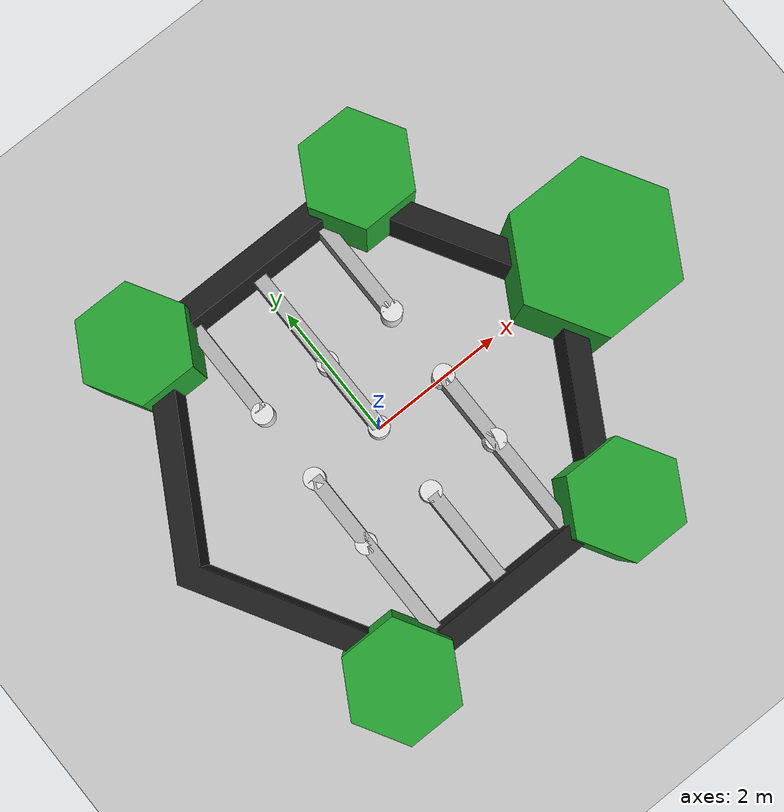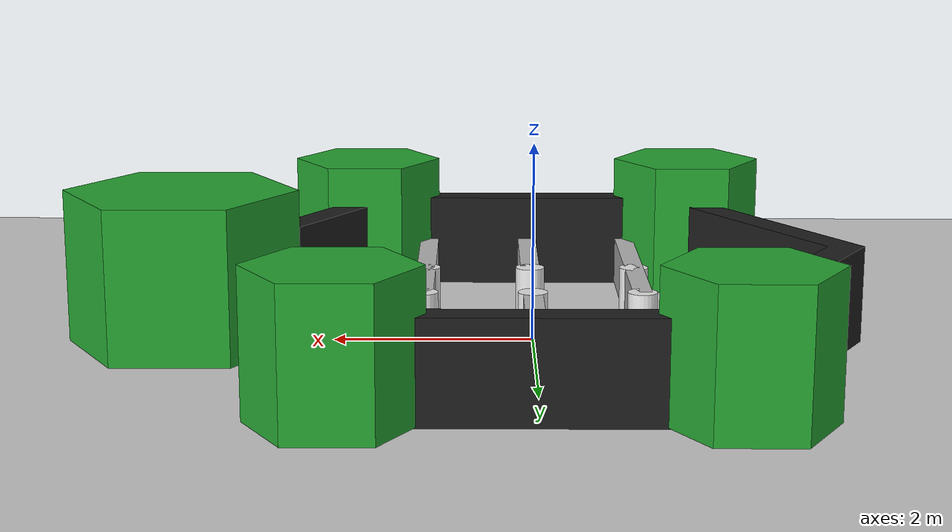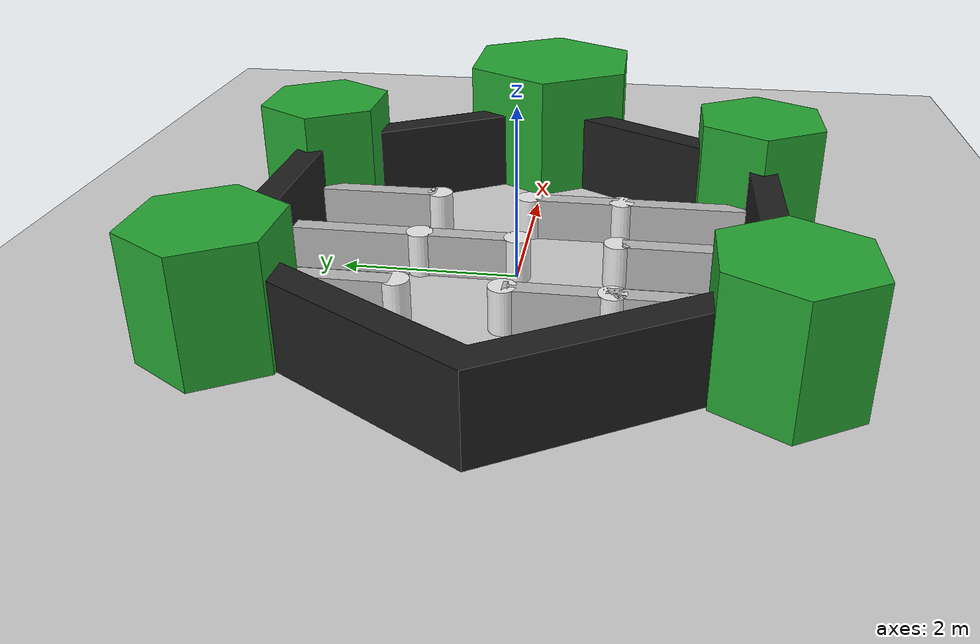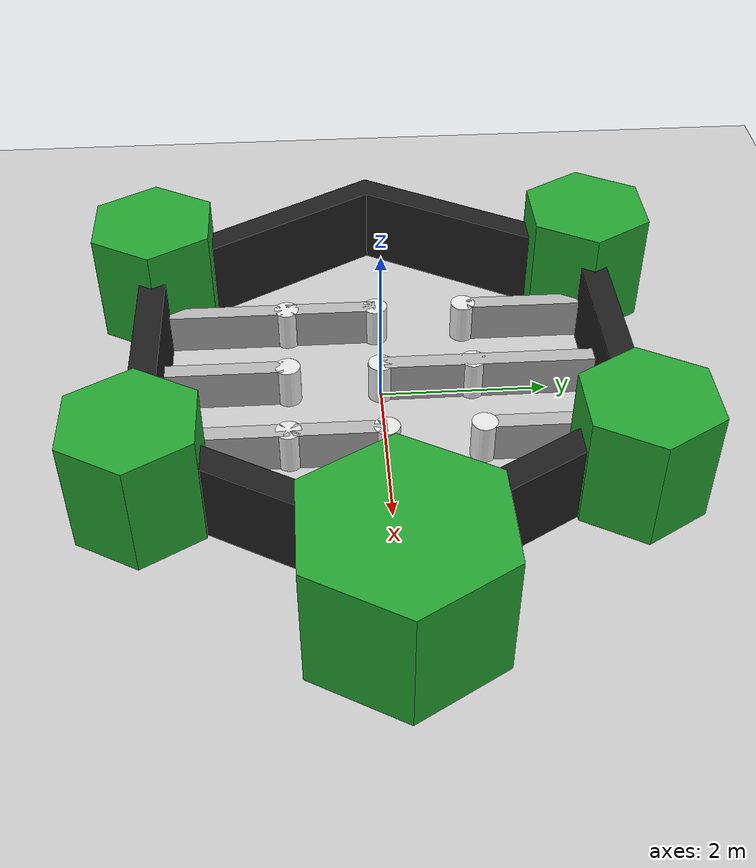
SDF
<sdf version='1.4'>
  <world name='default'>
    <!-- A global light source -->
    <include>
      <uri>model://sun</uri>
    </include>

    <!-- A ground plane -->
    <include>
      <uri>model://ground_plane</uri>
    </include>

    <physics type="ode">
      <real_time_update_rate>1500.0</real_time_update_rate>
      <max_step_size>0.001</max_step_size>
      <real_time_factor>1.5</real_time_factor>
      <ode>
        <solver>
          <type>quick</type>
          <iters>150</iters>
          <precon_iters>0</precon_iters>
          <sor>1.400000</sor>
          <use_dynamic_moi_rescaling>1</use_dynamic_moi_rescaling>
        </solver>
        <constraints>
          <cfm>0.00001</cfm>
          <erp>0.2</erp>
          <contact_max_correcting_vel>2000.000000</contact_max_correcting_vel>
          <contact_surface_layer>0.01000</contact_surface_layer>
        </constraints>
      </ode>
    </physics>

    <!-- A turtlebot symbol -->
    <include>
      <uri>model://turtlebot3_opposite</uri>
    </include>

    <scene>
      <ambient>0.4 0.4 0.4 1</ambient>
      <background>0.7 0.7 0.7 1</background>
      <shadows>true</shadows>
    </scene>

    <gui fullscreen='0'>
      <camera name='user_camera'>
        <pose>0.8 0.0 12.0 0 1.5708 0</pose>
        <view_controller>orbit</view_controller>
      </camera>
    </gui>
  </world>
</sdf>

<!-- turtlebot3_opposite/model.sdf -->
<sdf version='1.4'>
    <!-- Draw Circle -->
    <model name='ros_symbol'>
      <static>1</static>
      <link name='symbol'>
        <collision name='one_one'>
          <pose>-1.1 -1.1 0.25 0 0 0</pose>
          <geometry>
            <cylinder>
              <radius>0.15</radius>
              <length>0.5</length>
            </cylinder>
          </geometry>
          <max_contacts>10</max_contacts>
          <surface>
            <bounce/>
            <friction>
              <ode/>
            </friction>
            <contact>
              <ode/>
            </contact>
          </surface>
        </collision>

        <visual name='one_one'>
          <pose>-1.1 -1.1 0.25 0 0 0</pose>
          <geometry>
            <cylinder>
              <radius>0.15</radius>
              <length>0.5</length>
            </cylinder>
          </geometry>
          <material>
            <script>
              <uri>file://media/materials/scripts/gazebo.material</uri>
              <name>Gazebo/White</name>
            </script>
          </material>
        </visual>

        <collision name='one_two'>
          <pose>-1.1 0 0.25 0 0 0</pose>
          <geometry>
            <cylinder>
              <radius>0.15</radius>
              <length>0.5</length>
            </cylinder>
          </geometry>
          <max_contacts>10</max_contacts>
          <surface>
            <bounce/>
            <friction>
              <ode/>
            </friction>
            <contact>
              <ode/>
            </contact>
          </surface>
        </collision>

        <visual name='one_two'>
          <pose>-1.1 0 0.25 0 0 0</pose>
          <geometry>
            <cylinder>
              <radius>0.15</radius>
              <length>0.5</length>
            </cylinder>
          </geometry>
          <material>
            <script>
              <uri>file://media/materials/scripts/gazebo.material</uri>
              <name>Gazebo/White</name>
            </script>
          </material>
        </visual>

        <collision name='one_three'>
          <pose>-1.1 1.1 0.25 0 0 0</pose>
          <geometry>
            <cylinder>
              <radius>0.15</radius>
              <length>0.5</length>
            </cylinder>
          </geometry>
          <max_contacts>10</max_contacts>
          <surface>
            <bounce/>
            <friction>
              <ode/>
            </friction>
            <contact>
              <ode/>
            </contact>
          </surface>
        </collision>

        <visual name='one_three'>
          <pose>-1.1 1.1 0.25 0 0 0</pose>
          <geometry>
            <cylinder>
              <radius>0.15</radius>
              <length>0.5</length>
            </cylinder>
          </geometry>
          <material>
            <script>
              <uri>file://media/materials/scripts/gazebo.material</uri>
              <name>Gazebo/White</name>
            </script>
          </material>
        </visual>

        <collision name='two_one'>
          <pose>0 -1.1 0.25 0 0 0</pose>
          <geometry>
            <cylinder>
              <radius>0.15</radius>
              <length>0.5</length>
            </cylinder>
          </geometry>
          <max_contacts>10</max_contacts>
          <surface>
            <bounce/>
            <friction>
              <ode/>
            </friction>
            <contact>
              <ode/>
            </contact>
          </surface>
        </collision>

        <visual name='two_one'>
          <pose>0 -1.1 0.25 0 0 0</pose>
          <geometry>
            <cylinder>
              <radius>0.15</radius>
              <length>0.5</length>
            </cylinder>
          </geometry>
          <material>
            <script>
              <uri>file://media/materials/scripts/gazebo.material</uri>
              <name>Gazebo/White</name>
            </script>
          </material>
        </visual>

        <collision name='two_two'>
          <pose>0 0 0.25 0 0 0</pose>
          <geometry>
            <cylinder>
              <radius>0.15</radius>
              <length>0.5</length>
            </cylinder>
          </geometry>
          <max_contacts>10</max_contacts>
          <surface>
            <bounce/>
            <friction>
              <ode/>
            </friction>
            <contact>
              <ode/>
            </contact>
          </surface>
        </collision>

        <visual name='two_two'>
          <pose>0 0 0.25 0 0 0</pose>
          <geometry>
            <cylinder>
              <radius>0.15</radius>
              <length>0.5</length>
            </cylinder>
          </geometry>
          <material>
            <script>
              <uri>file://media/materials/scripts/gazebo.material</uri>
              <name>Gazebo/White</name>
            </script>
          </material>
        </visual>

        <collision name='two_three'>
          <pose>0 1.1 0.25 0 0 0</pose>
          <geometry>
            <cylinder>
              <radius>0.15</radius>
              <length>0.5</length>
            </cylinder>
          </geometry>
          <max_contacts>10</max_contacts>
          <surface>
            <bounce/>
            <friction>
              <ode/>
            </friction>
            <contact>
              <ode/>
            </contact>
          </surface>
        </collision>

        <visual name='two_three'>
          <pose>0 1.1 0.25 0 0 0</pose>
          <geometry>
            <cylinder>
              <radius>0.15</radius>
              <length>0.5</length>
            </cylinder>
          </geometry>
          <material>
            <script>
              <uri>file://media/materials/scripts/gazebo.material</uri>
              <name>Gazebo/White</name>
            </script>
          </material>
        </visual>

        <collision name='three_one'>
          <pose>1.1 -1.1 0.25 0 0 0</pose>
          <geometry>
            <cylinder>
              <radius>0.15</radius>
              <length>0.5</length>
            </cylinder>
          </geometry>
          <max_contacts>10</max_contacts>
          <surface>
            <bounce/>
            <friction>
              <ode/>
            </friction>
            <contact>
              <ode/>
            </contact>
          </surface>
        </collision>

        <visual name='three_one'>
          <pose>1.1 -1.1 0.25 0 0 0</pose>
          <geometry>
            <cylinder>
              <radius>0.15</radius>
              <length>0.5</length>
            </cylinder>
          </geometry>
          <material>
            <script>
              <uri>file://media/materials/scripts/gazebo.material</uri>
              <name>Gazebo/White</name>
            </script>
          </material>
        </visual>

        <collision name='three_two'>
          <pose>1.1 0 0.25 0 0 0</pose>
          <geometry>
            <cylinder>
              <radius>0.15</radius>
              <length>0.5</length>
            </cylinder>
          </geometry>
          <max_contacts>10</max_contacts>
          <surface>
            <bounce/>
            <friction>
              <ode/>
            </friction>
            <contact>
              <ode/>
            </contact>
          </surface>
        </collision>

        <visual name='three_two'>
          <pose>1.1 0 0.25 0 0 0</pose>
          <geometry>
            <cylinder>
              <radius>0.15</radius>
              <length>0.5</length>
            </cylinder>
          </geometry>
          <material>
            <script>
              <uri>file://media/materials/scripts/gazebo.material</uri>
              <name>Gazebo/White</name>
            </script>
          </material>
        </visual>

        <collision name='three_three'>
          <pose>1.1 1.1 0.25 0 0 0</pose>
          <geometry>
            <cylinder>
              <radius>0.15</radius>
              <length>0.5</length>
            </cylinder>
          </geometry>
          <max_contacts>10</max_contacts>
          <surface>
            <bounce/>
            <friction>
              <ode/>
            </friction>
            <contact>
              <ode/>
            </contact>
          </surface>
        </collision>

        <visual name='three_three'>
          <pose>1.1 1.1 0.25 0 0 0</pose>
          <geometry>
            <cylinder>
              <radius>0.15</radius>
              <length>0.5</length>
            </cylinder>
          </geometry>
          <material>
            <script>
              <uri>file://media/materials/scripts/gazebo.material</uri>
              <name>Gazebo/White</name>
            </script>
          </material>
        </visual>

        <visual name="wall_custom_1">
          <pose>-1.1 -1.3 0.25 0 0 0</pose>
          <geometry>
            <box>
              <size>0.2 2.6 0.5</size>
            </box>
          </geometry>
        </visual>

        <collision name="wall_custom_1_collision">
          <pose>-1.1 -1.3 0.25 0 0 0</pose>
          <geometry>
            <box>
              <size>0.2 2.6 0.5</size>
            </box>
          </geometry>
        </collision>

        <visual name="wall_custom_2">
          <pose>-1.1 1.9 0.25 0 0 0</pose>
          <geometry>
            <box>
              <size>0.2 1.5 0.5</size>
            </box>
          </geometry>
        </visual>

        <collision name="wall_custom_2_collision">
          <pose>-1.1 1.9 0.25 0 0 0</pose>
          <geometry>
            <box>
              <size>0.2 1.5 0.5</size>
            </box>
          </geometry>
        </collision>

        <visual name="wall_custom_3">
          <pose>0 -1.9 0.25 0 0 0</pose>
          <geometry>
            <box>
              <size>0.2 1.5 0.5</size>
            </box>
          </geometry>
        </visual>

        <collision name="wall_custom_3_collision">
          <pose>0 -1.9 0.25 0 0 0</pose>
          <geometry>
            <box>
              <size>0.2 1.5 0.5</size>
            </box>
          </geometry>
        </collision>

        <visual name="wall_custom_4">
          <pose>0 1.3 0.25 0 0 0</pose>
          <geometry>
            <box>
              <size>0.2 2.6 0.5</size>
            </box>
          </geometry>
        </visual>

        <collision name="wall_custom_4_collision">
          <pose>0 1.3 0.25 0 0 0</pose>
          <geometry>
            <box>
              <size>0.2 2.6 0.5</size>
            </box>
          </geometry>
        </collision>

        <visual name="wall_custom_5">
          <pose>1.1 -1.3 0.25 0 0 0</pose>
          <geometry>
            <box>
              <size>0.2 2.6 0.5</size>
            </box>
          </geometry>
        </visual>

        <collision name="wall_custom_5_collision">
          <pose>1.1 -1.3 0.25 0 0 0</pose>
          <geometry>
            <box>
              <size>0.2 2.6 0.5</size>
            </box>
          </geometry>
        </collision>

        <visual name="wall_custom_6">
          <pose>1.1 1.9 0.25 0 0 0</pose>
          <geometry>
            <box>
              <size>0.2 1.5 0.5</size>
            </box>
          </geometry>
        </visual>

        <collision name="wall_custom_6_collision">
          <pose>1.1 1.9 0.25 0 0 0</pose>
          <geometry>
            <box>
              <size>0.2 1.5 0.5</size>
            </box>
          </geometry>
        </collision>

        <!-- Draw Hexagon -->
        <collision name='head'>
          <pose>3.5 0 -0.5 0 0 0</pose>
          <geometry>
            <mesh>
              <uri>model://turtlebot3/meshes/hexagon.dae</uri>
              <scale>0.8 0.8 0.8</scale>
            </mesh>
          </geometry>
          <max_contacts>10</max_contacts>
          <surface>
            <bounce/>
            <friction>
              <ode/>
            </friction>
            <contact>
              <ode/>
            </contact>
          </surface>
        </collision>

        <visual name='head'>
          <pose>3.5 0 -0.5 0 0 0</pose>
          <geometry>
            <mesh>
              <uri>model://turtlebot3/meshes/hexagon.dae</uri>
              <scale>0.8 0.8 0.8</scale>
            </mesh>
          </geometry>
          <material>
            <script>
              <uri>file://media/materials/scripts/gazebo.material</uri>
              <name>Gazebo/Green</name>
            </script>
          </material>
        </visual>

        <collision name='left_hand'>
          <pose>1.8 2.7 0 0 0 0</pose>
          <geometry>
            <mesh>
              <uri>model://turtlebot3/meshes/hexagon.dae</uri>
              <scale>0.55 0.55 0.55</scale>
            </mesh>
          </geometry>
          <max_contacts>10</max_contacts>
          <surface>
            <bounce/>
            <friction>
              <ode/>
            </friction>
            <contact>
              <ode/>
            </contact>
          </surface>
        </collision>

        <visual name='left_hand'>
          <pose>1.8 2.7 0 0 0 0</pose>
          <geometry>
            <mesh>
              <uri>model://turtlebot3/meshes/hexagon.dae</uri>
              <scale>0.55 0.55 0.55</scale>
            </mesh>
          </geometry>
          <material>
            <script>
              <uri>file://media/materials/scripts/gazebo.material</uri>
              <name>Gazebo/Green</name>
            </script>
          </material>
        </visual>

        <collision name='right_hand'>
          <pose>1.8 -2.7 0 0 0 0</pose>
          <geometry>
            <mesh>
              <uri>model://turtlebot3/meshes/hexagon.dae</uri>
              <scale>0.55 0.55 0.55</scale>
            </mesh>
          </geometry>
          <max_contacts>10</max_contacts>
          <surface>
            <bounce/>
            <friction>
              <ode/>
            </friction>
            <contact>
              <ode/>
            </contact>
          </surface>
        </collision>

        <visual name='right_hand'>
          <pose>1.8 -2.7 0 0 0 0</pose>
          <geometry>
            <mesh>
              <uri>model://turtlebot3/meshes/hexagon.dae</uri>
              <scale>0.55 0.55 0.55</scale>
            </mesh>
          </geometry>
          <material>
            <script>
              <uri>file://media/materials/scripts/gazebo.material</uri>
              <name>Gazebo/Green</name>
            </script>
          </material>
        </visual>

        <collision name='left_foot'>
          <pose>-1.8 2.7 0 0 0 0</pose>
          <geometry>
            <mesh>
              <uri>model://turtlebot3/meshes/hexagon.dae</uri>
              <scale>0.55 0.55 0.55</scale>
            </mesh>
          </geometry>
          <max_contacts>10</max_contacts>
          <surface>
            <bounce/>
            <friction>
              <ode/>
            </friction>
            <contact>
              <ode/>
            </contact>
          </surface>
        </collision>

        <visual name='left_foot'>
          <pose>-1.8 2.7 0 0 0 0</pose>
          <geometry>
            <mesh>
              <uri>model://turtlebot3/meshes/hexagon.dae</uri>
              <scale>0.55 0.55 0.55</scale>
            </mesh>
          </geometry>
          <material>
            <script>
              <uri>file://media/materials/scripts/gazebo.material</uri>
              <name>Gazebo/Green</name>
            </script>
          </material>
        </visual>

        <collision name='right_foot'>
          <pose>-1.8 -2.7 0 0 0 0</pose>
          <geometry>
            <mesh>
              <uri>model://turtlebot3/meshes/hexagon.dae</uri>
              <scale>0.55 0.55 0.55</scale>
            </mesh>
          </geometry>
          <max_contacts>10</max_contacts>
          <surface>
            <bounce/>
            <friction>
              <ode/>
            </friction>
            <contact>
              <ode/>
            </contact>
          </surface>
        </collision>

        <visual name='right_foot'>
          <pose>-1.8 -2.7 0 0 0 0</pose>
          <geometry>
            <mesh>
              <uri>model://turtlebot3/meshes/hexagon.dae</uri>
              <scale>0.55 0.55 0.55</scale>
            </mesh>
          </geometry>
          <material>
            <script>
              <uri>file://media/materials/scripts/gazebo.material</uri>
              <name>Gazebo/Green</name>
            </script>
          </material>
        </visual>

        <!-- Draw Wall -->
        <collision name='body'>
        <pose>0 0 -0.3 0 0 -1.5708</pose>
        <geometry>
          <mesh>
            <uri>model://turtlebot3/meshes/wall.dae</uri>
            <scale>0.25 0.25 0.25</scale>
          </mesh>
        </geometry>
        <max_contacts>10</max_contacts>
        <surface>
          <bounce/>
          <friction>
            <ode/>
          </friction>
          <contact>
            <ode/>
          </contact>
        </surface>
      </collision>

      <visual name='body'>
        <pose>0 0 -0.3 0 0 -1.5708</pose>
        <geometry>
          <mesh>
            <uri>model://turtlebot3/meshes/wall.dae</uri>
            <scale>0.25 0.25 0.25</scale>
          </mesh>
        </geometry>
        <material>
          <script>
            <uri>file://media/materials/scripts/gazebo.material</uri>
            <name>Gazebo/FlatBlack</name>
          </script>
        </material>
      </visual>
    </link>
  </model>
</sdf>
